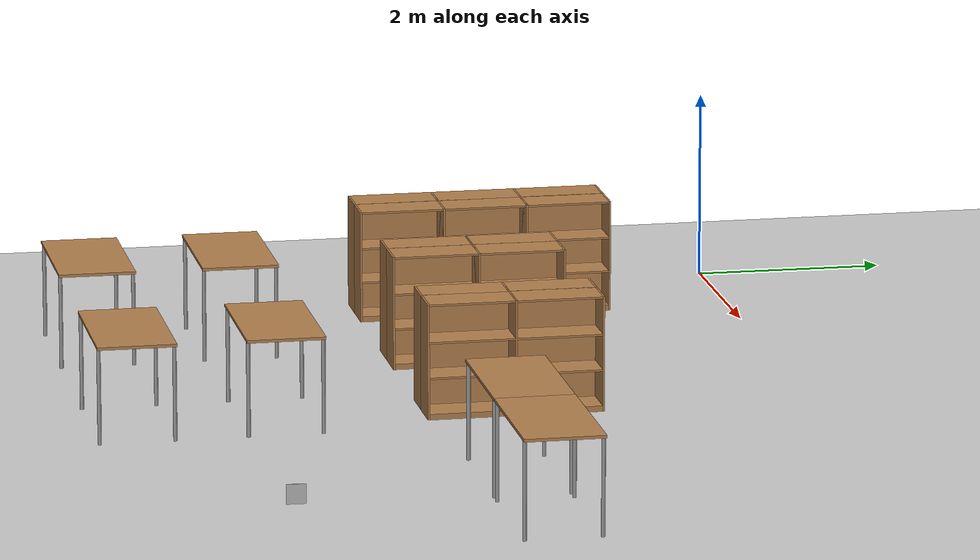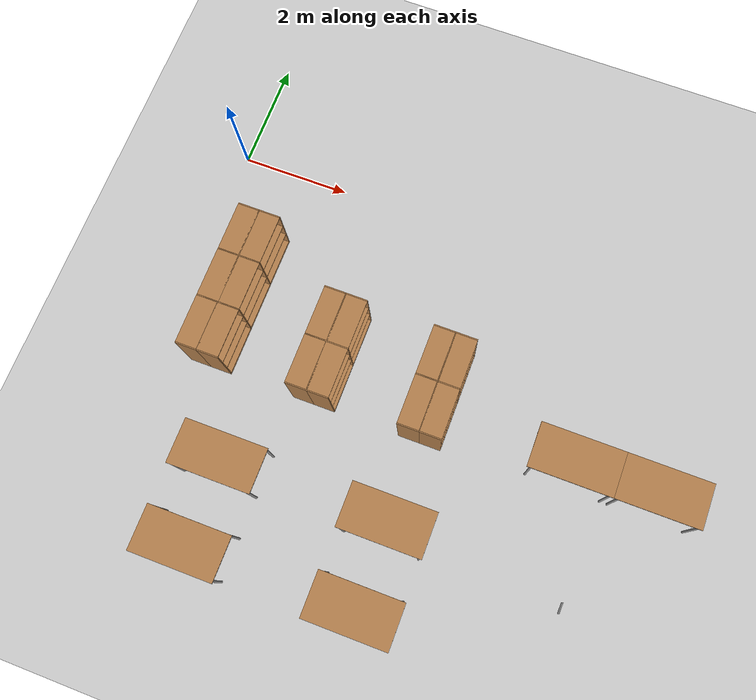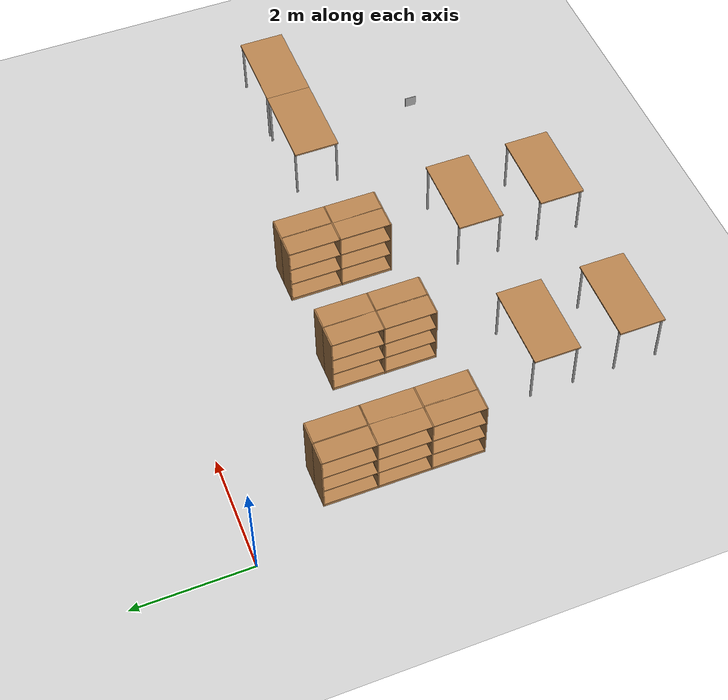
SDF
<sdf version="1.7">
 <world name="default">
  <model name="ground_plane">
   <static>1</static>
   <link name="link">
    <collision name="collision">
     <geometry><plane><normal>0 0 1</normal><size>100 100</size></plane></geometry>
     <surface><friction><ode><mu>100</mu><mu2>50</mu2></ode></friction></surface>
    </collision>
    <visual name="visual">
     <cast_shadows>0</cast_shadows>
     <geometry><plane><normal>0 0 1</normal><size>100 100</size></plane></geometry>
     <material>
      <script><uri>file://media/materials/scripts/gazebo.material</uri><name>Gazebo/Grey</name></script>
     </material>
    </visual>
   </link>
  </model>
  <model name="bot_sec5_A_2">
   <static>1</static>
   <link name="link">
    <inertial><mass>1</mass></inertial>
    <visual name="visual1">
     <pose>0 0.005 0.6 0 -0 0</pose>
     <geometry><box><size>0.9 0.01 1.2</size></box></geometry>
     <material>
      <script><uri>file://media/materials/scripts/gazebo.material</uri><name>Gazebo/Wood</name></script>
     </material>
    </visual>
    <visual name="visual2">
     <pose>0.45 -0.195 0.6 0 -0 0</pose>
     <geometry><box><size>0.02 0.4 1.2</size></box></geometry>
     <material>
      <script><uri>file://media/materials/scripts/gazebo.material</uri><name>Gazebo/Wood</name></script>
     </material>
    </visual>
    <visual name="visual3">
     <pose>-0.45 -0.195 0.6 0 -0 0</pose>
     <geometry><box><size>0.02 0.4 1.2</size></box></geometry>
     <material>
      <script><uri>file://media/materials/scripts/gazebo.material</uri><name>Gazebo/Wood</name></script>
     </material>
    </visual>
    <visual name="visual4">
     <pose>0 -0.195 0.03 0 -0 0</pose>
     <geometry><box><size>0.88 0.4 0.06</size></box></geometry>
     <material>
      <script><uri>file://media/materials/scripts/gazebo.material</uri><name>Gazebo/Wood</name></script>
     </material>
    </visual>
    <visual name="visual5">
     <pose>0 -0.195 1.19 0 -0 0</pose>
     <geometry><box><size>0.88 0.4 0.02</size></box></geometry>
     <material>
      <script><uri>file://media/materials/scripts/gazebo.material</uri><name>Gazebo/Wood</name></script>
     </material>
    </visual>
    <visual name="visual6">
     <pose>0 -0.195 0.43 0 -0 0</pose>
     <geometry><box><size>0.88 0.4 0.02</size></box></geometry>
     <material>
      <script><uri>file://media/materials/scripts/gazebo.material</uri><name>Gazebo/Wood</name></script>
     </material>
    </visual>
    <visual name="visual7">
     <pose>0 -0.195 0.8 0 -0 0</pose>
     <geometry><box><size>0.88 0.4 0.02</size></box></geometry>
     <material>
      <script><uri>file://media/materials/scripts/gazebo.material</uri><name>Gazebo/Wood</name></script>
     </material>
    </visual>
    <collision name="unified_hitbox">
     <pose>0 -0.1925 0.6 0 -0 0</pose>
     <geometry><box><size>0.92 0.405 1.2</size></box></geometry>
    </collision>
   </link>
   <pose>5 -2.65 0 0 -0 1.57</pose>
  </model>
  <model name="bot_sec5_B_2">
   <static>1</static>
   <link name="link">
    <inertial><mass>1</mass></inertial>
    <visual name="visual1">
     <pose>0 0.005 0.6 0 -0 0</pose>
     <geometry><box><size>0.9 0.01 1.2</size></box></geometry>
     <material>
      <script><uri>file://media/materials/scripts/gazebo.material</uri><name>Gazebo/Wood</name></script>
     </material>
    </visual>
    <visual name="visual2">
     <pose>0.45 -0.195 0.6 0 -0 0</pose>
     <geometry><box><size>0.02 0.4 1.2</size></box></geometry>
     <material>
      <script><uri>file://media/materials/scripts/gazebo.material</uri><name>Gazebo/Wood</name></script>
     </material>
    </visual>
    <visual name="visual3">
     <pose>-0.45 -0.195 0.6 0 -0 0</pose>
     <geometry><box><size>0.02 0.4 1.2</size></box></geometry>
     <material>
      <script><uri>file://media/materials/scripts/gazebo.material</uri><name>Gazebo/Wood</name></script>
     </material>
    </visual>
    <visual name="visual4">
     <pose>0 -0.195 0.03 0 -0 0</pose>
     <geometry><box><size>0.88 0.4 0.06</size></box></geometry>
     <material>
      <script><uri>file://media/materials/scripts/gazebo.material</uri><name>Gazebo/Wood</name></script>
     </material>
    </visual>
    <visual name="visual5">
     <pose>0 -0.195 1.19 0 -0 0</pose>
     <geometry><box><size>0.88 0.4 0.02</size></box></geometry>
     <material>
      <script><uri>file://media/materials/scripts/gazebo.material</uri><name>Gazebo/Wood</name></script>
     </material>
    </visual>
    <visual name="visual6">
     <pose>0 -0.195 0.43 0 -0 0</pose>
     <geometry><box><size>0.88 0.4 0.02</size></box></geometry>
     <material>
      <script><uri>file://media/materials/scripts/gazebo.material</uri><name>Gazebo/Wood</name></script>
     </material>
    </visual>
    <visual name="visual7">
     <pose>0 -0.195 0.8 0 -0 0</pose>
     <geometry><box><size>0.88 0.4 0.02</size></box></geometry>
     <material>
      <script><uri>file://media/materials/scripts/gazebo.material</uri><name>Gazebo/Wood</name></script>
     </material>
    </visual>
    <collision name="unified_hitbox">
     <pose>0 -0.1925 0.6 0 -0 0</pose>
     <geometry><box><size>0.92 0.405 1.2</size></box></geometry>
    </collision>
   </link>
   <pose>5 -2.65 0 0 0 -1.57</pose>
  </model>
  <model name="bot_sec5_A_3">
   <static>1</static>
   <link name="link">
    <inertial><mass>1</mass></inertial>
    <visual name="visual1">
     <pose>0 0.005 0.6 0 -0 0</pose>
     <geometry><box><size>0.9 0.01 1.2</size></box></geometry>
     <material>
      <script><uri>file://media/materials/scripts/gazebo.material</uri><name>Gazebo/Wood</name></script>
     </material>
    </visual>
    <visual name="visual2">
     <pose>0.45 -0.195 0.6 0 -0 0</pose>
     <geometry><box><size>0.02 0.4 1.2</size></box></geometry>
     <material>
      <script><uri>file://media/materials/scripts/gazebo.material</uri><name>Gazebo/Wood</name></script>
     </material>
    </visual>
    <visual name="visual3">
     <pose>-0.45 -0.195 0.6 0 -0 0</pose>
     <geometry><box><size>0.02 0.4 1.2</size></box></geometry>
     <material>
      <script><uri>file://media/materials/scripts/gazebo.material</uri><name>Gazebo/Wood</name></script>
     </material>
    </visual>
    <visual name="visual4">
     <pose>0 -0.195 0.03 0 -0 0</pose>
     <geometry><box><size>0.88 0.4 0.06</size></box></geometry>
     <material>
      <script><uri>file://media/materials/scripts/gazebo.material</uri><name>Gazebo/Wood</name></script>
     </material>
    </visual>
    <visual name="visual5">
     <pose>0 -0.195 1.19 0 -0 0</pose>
     <geometry><box><size>0.88 0.4 0.02</size></box></geometry>
     <material>
      <script><uri>file://media/materials/scripts/gazebo.material</uri><name>Gazebo/Wood</name></script>
     </material>
    </visual>
    <visual name="visual6">
     <pose>0 -0.195 0.43 0 -0 0</pose>
     <geometry><box><size>0.88 0.4 0.02</size></box></geometry>
     <material>
      <script><uri>file://media/materials/scripts/gazebo.material</uri><name>Gazebo/Wood</name></script>
     </material>
    </visual>
    <visual name="visual7">
     <pose>0 -0.195 0.8 0 -0 0</pose>
     <geometry><box><size>0.88 0.4 0.02</size></box></geometry>
     <material>
      <script><uri>file://media/materials/scripts/gazebo.material</uri><name>Gazebo/Wood</name></script>
     </material>
    </visual>
    <collision name="unified_hitbox">
     <pose>0 -0.1925 0.6 0 -0 0</pose>
     <geometry><box><size>0.92 0.405 1.2</size></box></geometry>
    </collision>
   </link>
   <pose>5 -3.55 0 0 -0 1.57</pose>
  </model>
  <model name="bot_sec5_B_3">
   <static>1</static>
   <link name="link">
    <inertial><mass>1</mass></inertial>
    <visual name="visual1">
     <pose>0 0.005 0.6 0 -0 0</pose>
     <geometry><box><size>0.9 0.01 1.2</size></box></geometry>
     <material>
      <script><uri>file://media/materials/scripts/gazebo.material</uri><name>Gazebo/Wood</name></script>
     </material>
    </visual>
    <visual name="visual2">
     <pose>0.45 -0.195 0.6 0 -0 0</pose>
     <geometry><box><size>0.02 0.4 1.2</size></box></geometry>
     <material>
      <script><uri>file://media/materials/scripts/gazebo.material</uri><name>Gazebo/Wood</name></script>
     </material>
    </visual>
    <visual name="visual3">
     <pose>-0.45 -0.195 0.6 0 -0 0</pose>
     <geometry><box><size>0.02 0.4 1.2</size></box></geometry>
     <material>
      <script><uri>file://media/materials/scripts/gazebo.material</uri><name>Gazebo/Wood</name></script>
     </material>
    </visual>
    <visual name="visual4">
     <pose>0 -0.195 0.03 0 -0 0</pose>
     <geometry><box><size>0.88 0.4 0.06</size></box></geometry>
     <material>
      <script><uri>file://media/materials/scripts/gazebo.material</uri><name>Gazebo/Wood</name></script>
     </material>
    </visual>
    <visual name="visual5">
     <pose>0 -0.195 1.19 0 -0 0</pose>
     <geometry><box><size>0.88 0.4 0.02</size></box></geometry>
     <material>
      <script><uri>file://media/materials/scripts/gazebo.material</uri><name>Gazebo/Wood</name></script>
     </material>
    </visual>
    <visual name="visual6">
     <pose>0 -0.195 0.43 0 -0 0</pose>
     <geometry><box><size>0.88 0.4 0.02</size></box></geometry>
     <material>
      <script><uri>file://media/materials/scripts/gazebo.material</uri><name>Gazebo/Wood</name></script>
     </material>
    </visual>
    <visual name="visual7">
     <pose>0 -0.195 0.8 0 -0 0</pose>
     <geometry><box><size>0.88 0.4 0.02</size></box></geometry>
     <material>
      <script><uri>file://media/materials/scripts/gazebo.material</uri><name>Gazebo/Wood</name></script>
     </material>
    </visual>
    <collision name="unified_hitbox">
     <pose>0 -0.1925 0.6 0 -0 0</pose>
     <geometry><box><size>0.92 0.405 1.2</size></box></geometry>
    </collision>
   </link>
   <pose>5 -3.55 0 0 0 -1.57</pose>
  </model>
  <model name="bot_sec3_A_2">
   <static>1</static>
   <link name="link">
    <inertial><mass>1</mass></inertial>
    <visual name="visual1">
     <pose>0 0.005 0.6 0 -0 0</pose>
     <geometry><box><size>0.9 0.01 1.2</size></box></geometry>
     <material>
      <script><uri>file://media/materials/scripts/gazebo.material</uri><name>Gazebo/Wood</name></script>
     </material>
    </visual>
    <visual name="visual2">
     <pose>0.45 -0.195 0.6 0 -0 0</pose>
     <geometry><box><size>0.02 0.4 1.2</size></box></geometry>
     <material>
      <script><uri>file://media/materials/scripts/gazebo.material</uri><name>Gazebo/Wood</name></script>
     </material>
    </visual>
    <visual name="visual3">
     <pose>-0.45 -0.195 0.6 0 -0 0</pose>
     <geometry><box><size>0.02 0.4 1.2</size></box></geometry>
     <material>
      <script><uri>file://media/materials/scripts/gazebo.material</uri><name>Gazebo/Wood</name></script>
     </material>
    </visual>
    <visual name="visual4">
     <pose>0 -0.195 0.03 0 -0 0</pose>
     <geometry><box><size>0.88 0.4 0.06</size></box></geometry>
     <material>
      <script><uri>file://media/materials/scripts/gazebo.material</uri><name>Gazebo/Wood</name></script>
     </material>
    </visual>
    <visual name="visual5">
     <pose>0 -0.195 1.19 0 -0 0</pose>
     <geometry><box><size>0.88 0.4 0.02</size></box></geometry>
     <material>
      <script><uri>file://media/materials/scripts/gazebo.material</uri><name>Gazebo/Wood</name></script>
     </material>
    </visual>
    <visual name="visual6">
     <pose>0 -0.195 0.43 0 -0 0</pose>
     <geometry><box><size>0.88 0.4 0.02</size></box></geometry>
     <material>
      <script><uri>file://media/materials/scripts/gazebo.material</uri><name>Gazebo/Wood</name></script>
     </material>
    </visual>
    <visual name="visual7">
     <pose>0 -0.195 0.8 0 -0 0</pose>
     <geometry><box><size>0.88 0.4 0.02</size></box></geometry>
     <material>
      <script><uri>file://media/materials/scripts/gazebo.material</uri><name>Gazebo/Wood</name></script>
     </material>
    </visual>
    <collision name="unified_hitbox">
     <pose>0 -0.1925 0.6 0 -0 0</pose>
     <geometry><box><size>0.92 0.405 1.2</size></box></geometry>
    </collision>
   </link>
   <pose>3 -2.65 0 0 -0 1.57</pose>
  </model>
  <model name="bot_sec3_B_2">
   <static>1</static>
   <link name="link">
    <inertial><mass>1</mass></inertial>
    <visual name="visual1">
     <pose>0 0.005 0.6 0 -0 0</pose>
     <geometry><box><size>0.9 0.01 1.2</size></box></geometry>
     <material>
      <script><uri>file://media/materials/scripts/gazebo.material</uri><name>Gazebo/Wood</name></script>
     </material>
    </visual>
    <visual name="visual2">
     <pose>0.45 -0.195 0.6 0 -0 0</pose>
     <geometry><box><size>0.02 0.4 1.2</size></box></geometry>
     <material>
      <script><uri>file://media/materials/scripts/gazebo.material</uri><name>Gazebo/Wood</name></script>
     </material>
    </visual>
    <visual name="visual3">
     <pose>-0.45 -0.195 0.6 0 -0 0</pose>
     <geometry><box><size>0.02 0.4 1.2</size></box></geometry>
     <material>
      <script><uri>file://media/materials/scripts/gazebo.material</uri><name>Gazebo/Wood</name></script>
     </material>
    </visual>
    <visual name="visual4">
     <pose>0 -0.195 0.03 0 -0 0</pose>
     <geometry><box><size>0.88 0.4 0.06</size></box></geometry>
     <material>
      <script><uri>file://media/materials/scripts/gazebo.material</uri><name>Gazebo/Wood</name></script>
     </material>
    </visual>
    <visual name="visual5">
     <pose>0 -0.195 1.19 0 -0 0</pose>
     <geometry><box><size>0.88 0.4 0.02</size></box></geometry>
     <material>
      <script><uri>file://media/materials/scripts/gazebo.material</uri><name>Gazebo/Wood</name></script>
     </material>
    </visual>
    <visual name="visual6">
     <pose>0 -0.195 0.43 0 -0 0</pose>
     <geometry><box><size>0.88 0.4 0.02</size></box></geometry>
     <material>
      <script><uri>file://media/materials/scripts/gazebo.material</uri><name>Gazebo/Wood</name></script>
     </material>
    </visual>
    <visual name="visual7">
     <pose>0 -0.195 0.8 0 -0 0</pose>
     <geometry><box><size>0.88 0.4 0.02</size></box></geometry>
     <material>
      <script><uri>file://media/materials/scripts/gazebo.material</uri><name>Gazebo/Wood</name></script>
     </material>
    </visual>
    <collision name="unified_hitbox">
     <pose>0 -0.1925 0.6 0 -0 0</pose>
     <geometry><box><size>0.92 0.405 1.2</size></box></geometry>
    </collision>
   </link>
   <pose>3 -2.65 0 0 0 -1.57</pose>
  </model>
  <model name="bot_sec3_A_3">
   <static>1</static>
   <link name="link">
    <inertial><mass>1</mass></inertial>
    <visual name="visual1">
     <pose>0 0.005 0.6 0 -0 0</pose>
     <geometry><box><size>0.9 0.01 1.2</size></box></geometry>
     <material>
      <script><uri>file://media/materials/scripts/gazebo.material</uri><name>Gazebo/Wood</name></script>
     </material>
    </visual>
    <visual name="visual2">
     <pose>0.45 -0.195 0.6 0 -0 0</pose>
     <geometry><box><size>0.02 0.4 1.2</size></box></geometry>
     <material>
      <script><uri>file://media/materials/scripts/gazebo.material</uri><name>Gazebo/Wood</name></script>
     </material>
    </visual>
    <visual name="visual3">
     <pose>-0.45 -0.195 0.6 0 -0 0</pose>
     <geometry><box><size>0.02 0.4 1.2</size></box></geometry>
     <material>
      <script><uri>file://media/materials/scripts/gazebo.material</uri><name>Gazebo/Wood</name></script>
     </material>
    </visual>
    <visual name="visual4">
     <pose>0 -0.195 0.03 0 -0 0</pose>
     <geometry><box><size>0.88 0.4 0.06</size></box></geometry>
     <material>
      <script><uri>file://media/materials/scripts/gazebo.material</uri><name>Gazebo/Wood</name></script>
     </material>
    </visual>
    <visual name="visual5">
     <pose>0 -0.195 1.19 0 -0 0</pose>
     <geometry><box><size>0.88 0.4 0.02</size></box></geometry>
     <material>
      <script><uri>file://media/materials/scripts/gazebo.material</uri><name>Gazebo/Wood</name></script>
     </material>
    </visual>
    <visual name="visual6">
     <pose>0 -0.195 0.43 0 -0 0</pose>
     <geometry><box><size>0.88 0.4 0.02</size></box></geometry>
     <material>
      <script><uri>file://media/materials/scripts/gazebo.material</uri><name>Gazebo/Wood</name></script>
     </material>
    </visual>
    <visual name="visual7">
     <pose>0 -0.195 0.8 0 -0 0</pose>
     <geometry><box><size>0.88 0.4 0.02</size></box></geometry>
     <material>
      <script><uri>file://media/materials/scripts/gazebo.material</uri><name>Gazebo/Wood</name></script>
     </material>
    </visual>
    <collision name="unified_hitbox">
     <pose>0 -0.1925 0.6 0 -0 0</pose>
     <geometry><box><size>0.92 0.405 1.2</size></box></geometry>
    </collision>
   </link>
   <pose>3 -3.55 0 0 -0 1.57</pose>
  </model>
  <model name="bot_sec3_B_3">
   <static>1</static>
   <link name="link">
    <inertial><mass>1</mass></inertial>
    <visual name="visual1">
     <pose>0 0.005 0.6 0 -0 0</pose>
     <geometry><box><size>0.9 0.01 1.2</size></box></geometry>
     <material>
      <script><uri>file://media/materials/scripts/gazebo.material</uri><name>Gazebo/Wood</name></script>
     </material>
    </visual>
    <visual name="visual2">
     <pose>0.45 -0.195 0.6 0 -0 0</pose>
     <geometry><box><size>0.02 0.4 1.2</size></box></geometry>
     <material>
      <script><uri>file://media/materials/scripts/gazebo.material</uri><name>Gazebo/Wood</name></script>
     </material>
    </visual>
    <visual name="visual3">
     <pose>-0.45 -0.195 0.6 0 -0 0</pose>
     <geometry><box><size>0.02 0.4 1.2</size></box></geometry>
     <material>
      <script><uri>file://media/materials/scripts/gazebo.material</uri><name>Gazebo/Wood</name></script>
     </material>
    </visual>
    <visual name="visual4">
     <pose>0 -0.195 0.03 0 -0 0</pose>
     <geometry><box><size>0.88 0.4 0.06</size></box></geometry>
     <material>
      <script><uri>file://media/materials/scripts/gazebo.material</uri><name>Gazebo/Wood</name></script>
     </material>
    </visual>
    <visual name="visual5">
     <pose>0 -0.195 1.19 0 -0 0</pose>
     <geometry><box><size>0.88 0.4 0.02</size></box></geometry>
     <material>
      <script><uri>file://media/materials/scripts/gazebo.material</uri><name>Gazebo/Wood</name></script>
     </material>
    </visual>
    <visual name="visual6">
     <pose>0 -0.195 0.43 0 -0 0</pose>
     <geometry><box><size>0.88 0.4 0.02</size></box></geometry>
     <material>
      <script><uri>file://media/materials/scripts/gazebo.material</uri><name>Gazebo/Wood</name></script>
     </material>
    </visual>
    <visual name="visual7">
     <pose>0 -0.195 0.8 0 -0 0</pose>
     <geometry><box><size>0.88 0.4 0.02</size></box></geometry>
     <material>
      <script><uri>file://media/materials/scripts/gazebo.material</uri><name>Gazebo/Wood</name></script>
     </material>
    </visual>
    <collision name="unified_hitbox">
     <pose>0 -0.1925 0.6 0 -0 0</pose>
     <geometry><box><size>0.92 0.405 1.2</size></box></geometry>
    </collision>
   </link>
   <pose>3 -3.55 0 0 0 -1.57</pose>
  </model>
  <model name="bot_sec1_A_1">
   <static>1</static>
   <link name="link">
    <inertial><mass>1</mass></inertial>
    <visual name="visual1">
     <pose>0 0.005 0.6 0 -0 0</pose>
     <geometry><box><size>0.9 0.01 1.2</size></box></geometry>
     <material>
      <script><uri>file://media/materials/scripts/gazebo.material</uri><name>Gazebo/Wood</name></script>
     </material>
    </visual>
    <visual name="visual2">
     <pose>0.45 -0.195 0.6 0 -0 0</pose>
     <geometry><box><size>0.02 0.4 1.2</size></box></geometry>
     <material>
      <script><uri>file://media/materials/scripts/gazebo.material</uri><name>Gazebo/Wood</name></script>
     </material>
    </visual>
    <visual name="visual3">
     <pose>-0.45 -0.195 0.6 0 -0 0</pose>
     <geometry><box><size>0.02 0.4 1.2</size></box></geometry>
     <material>
      <script><uri>file://media/materials/scripts/gazebo.material</uri><name>Gazebo/Wood</name></script>
     </material>
    </visual>
    <visual name="visual4">
     <pose>0 -0.195 0.03 0 -0 0</pose>
     <geometry><box><size>0.88 0.4 0.06</size></box></geometry>
     <material>
      <script><uri>file://media/materials/scripts/gazebo.material</uri><name>Gazebo/Wood</name></script>
     </material>
    </visual>
    <visual name="visual5">
     <pose>0 -0.195 1.19 0 -0 0</pose>
     <geometry><box><size>0.88 0.4 0.02</size></box></geometry>
     <material>
      <script><uri>file://media/materials/scripts/gazebo.material</uri><name>Gazebo/Wood</name></script>
     </material>
    </visual>
    <visual name="visual6">
     <pose>0 -0.195 0.43 0 -0 0</pose>
     <geometry><box><size>0.88 0.4 0.02</size></box></geometry>
     <material>
      <script><uri>file://media/materials/scripts/gazebo.material</uri><name>Gazebo/Wood</name></script>
     </material>
    </visual>
    <visual name="visual7">
     <pose>0 -0.195 0.8 0 -0 0</pose>
     <geometry><box><size>0.88 0.4 0.02</size></box></geometry>
     <material>
      <script><uri>file://media/materials/scripts/gazebo.material</uri><name>Gazebo/Wood</name></script>
     </material>
    </visual>
    <collision name="unified_hitbox">
     <pose>0 -0.1925 0.6 0 -0 0</pose>
     <geometry><box><size>0.92 0.405 1.2</size></box></geometry>
    </collision>
   </link>
   <pose>1 -1.75 0 0 -0 1.57</pose>
  </model>
  <model name="bot_sec1_B_1">
   <static>1</static>
   <link name="link">
    <inertial><mass>1</mass></inertial>
    <visual name="visual1">
     <pose>0 0.005 0.6 0 -0 0</pose>
     <geometry><box><size>0.9 0.01 1.2</size></box></geometry>
     <material>
      <script><uri>file://media/materials/scripts/gazebo.material</uri><name>Gazebo/Wood</name></script>
     </material>
    </visual>
    <visual name="visual2">
     <pose>0.45 -0.195 0.6 0 -0 0</pose>
     <geometry><box><size>0.02 0.4 1.2</size></box></geometry>
     <material>
      <script><uri>file://media/materials/scripts/gazebo.material</uri><name>Gazebo/Wood</name></script>
     </material>
    </visual>
    <visual name="visual3">
     <pose>-0.45 -0.195 0.6 0 -0 0</pose>
     <geometry><box><size>0.02 0.4 1.2</size></box></geometry>
     <material>
      <script><uri>file://media/materials/scripts/gazebo.material</uri><name>Gazebo/Wood</name></script>
     </material>
    </visual>
    <visual name="visual4">
     <pose>0 -0.195 0.03 0 -0 0</pose>
     <geometry><box><size>0.88 0.4 0.06</size></box></geometry>
     <material>
      <script><uri>file://media/materials/scripts/gazebo.material</uri><name>Gazebo/Wood</name></script>
     </material>
    </visual>
    <visual name="visual5">
     <pose>0 -0.195 1.19 0 -0 0</pose>
     <geometry><box><size>0.88 0.4 0.02</size></box></geometry>
     <material>
      <script><uri>file://media/materials/scripts/gazebo.material</uri><name>Gazebo/Wood</name></script>
     </material>
    </visual>
    <visual name="visual6">
     <pose>0 -0.195 0.43 0 -0 0</pose>
     <geometry><box><size>0.88 0.4 0.02</size></box></geometry>
     <material>
      <script><uri>file://media/materials/scripts/gazebo.material</uri><name>Gazebo/Wood</name></script>
     </material>
    </visual>
    <visual name="visual7">
     <pose>0 -0.195 0.8 0 -0 0</pose>
     <geometry><box><size>0.88 0.4 0.02</size></box></geometry>
     <material>
      <script><uri>file://media/materials/scripts/gazebo.material</uri><name>Gazebo/Wood</name></script>
     </material>
    </visual>
    <collision name="unified_hitbox">
     <pose>0 -0.1925 0.6 0 -0 0</pose>
     <geometry><box><size>0.92 0.405 1.2</size></box></geometry>
    </collision>
   </link>
   <pose>1 -1.75 0 0 0 -1.57</pose>
  </model>
  <model name="bot_sec1_A_2">
   <static>1</static>
   <link name="link">
    <inertial><mass>1</mass></inertial>
    <visual name="visual1">
     <pose>0 0.005 0.6 0 -0 0</pose>
     <geometry><box><size>0.9 0.01 1.2</size></box></geometry>
     <material>
      <script><uri>file://media/materials/scripts/gazebo.material</uri><name>Gazebo/Wood</name></script>
     </material>
    </visual>
    <visual name="visual2">
     <pose>0.45 -0.195 0.6 0 -0 0</pose>
     <geometry><box><size>0.02 0.4 1.2</size></box></geometry>
     <material>
      <script><uri>file://media/materials/scripts/gazebo.material</uri><name>Gazebo/Wood</name></script>
     </material>
    </visual>
    <visual name="visual3">
     <pose>-0.45 -0.195 0.6 0 -0 0</pose>
     <geometry><box><size>0.02 0.4 1.2</size></box></geometry>
     <material>
      <script><uri>file://media/materials/scripts/gazebo.material</uri><name>Gazebo/Wood</name></script>
     </material>
    </visual>
    <visual name="visual4">
     <pose>0 -0.195 0.03 0 -0 0</pose>
     <geometry><box><size>0.88 0.4 0.06</size></box></geometry>
     <material>
      <script><uri>file://media/materials/scripts/gazebo.material</uri><name>Gazebo/Wood</name></script>
     </material>
    </visual>
    <visual name="visual5">
     <pose>0 -0.195 1.19 0 -0 0</pose>
     <geometry><box><size>0.88 0.4 0.02</size></box></geometry>
     <material>
      <script><uri>file://media/materials/scripts/gazebo.material</uri><name>Gazebo/Wood</name></script>
     </material>
    </visual>
    <visual name="visual6">
     <pose>0 -0.195 0.43 0 -0 0</pose>
     <geometry><box><size>0.88 0.4 0.02</size></box></geometry>
     <material>
      <script><uri>file://media/materials/scripts/gazebo.material</uri><name>Gazebo/Wood</name></script>
     </material>
    </visual>
    <visual name="visual7">
     <pose>0 -0.195 0.8 0 -0 0</pose>
     <geometry><box><size>0.88 0.4 0.02</size></box></geometry>
     <material>
      <script><uri>file://media/materials/scripts/gazebo.material</uri><name>Gazebo/Wood</name></script>
     </material>
    </visual>
    <collision name="unified_hitbox">
     <pose>0 -0.1925 0.6 0 -0 0</pose>
     <geometry><box><size>0.92 0.405 1.2</size></box></geometry>
    </collision>
   </link>
   <pose>1 -2.65 0 0 -0 1.57</pose>
  </model>
  <model name="bot_sec1_B_2">
   <static>1</static>
   <link name="link">
    <inertial><mass>1</mass></inertial>
    <visual name="visual1">
     <pose>0 0.005 0.6 0 -0 0</pose>
     <geometry><box><size>0.9 0.01 1.2</size></box></geometry>
     <material>
      <script><uri>file://media/materials/scripts/gazebo.material</uri><name>Gazebo/Wood</name></script>
     </material>
    </visual>
    <visual name="visual2">
     <pose>0.45 -0.195 0.6 0 -0 0</pose>
     <geometry><box><size>0.02 0.4 1.2</size></box></geometry>
     <material>
      <script><uri>file://media/materials/scripts/gazebo.material</uri><name>Gazebo/Wood</name></script>
     </material>
    </visual>
    <visual name="visual3">
     <pose>-0.45 -0.195 0.6 0 -0 0</pose>
     <geometry><box><size>0.02 0.4 1.2</size></box></geometry>
     <material>
      <script><uri>file://media/materials/scripts/gazebo.material</uri><name>Gazebo/Wood</name></script>
     </material>
    </visual>
    <visual name="visual4">
     <pose>0 -0.195 0.03 0 -0 0</pose>
     <geometry><box><size>0.88 0.4 0.06</size></box></geometry>
     <material>
      <script><uri>file://media/materials/scripts/gazebo.material</uri><name>Gazebo/Wood</name></script>
     </material>
    </visual>
    <visual name="visual5">
     <pose>0 -0.195 1.19 0 -0 0</pose>
     <geometry><box><size>0.88 0.4 0.02</size></box></geometry>
     <material>
      <script><uri>file://media/materials/scripts/gazebo.material</uri><name>Gazebo/Wood</name></script>
     </material>
    </visual>
    <visual name="visual6">
     <pose>0 -0.195 0.43 0 -0 0</pose>
     <geometry><box><size>0.88 0.4 0.02</size></box></geometry>
     <material>
      <script><uri>file://media/materials/scripts/gazebo.material</uri><name>Gazebo/Wood</name></script>
     </material>
    </visual>
    <visual name="visual7">
     <pose>0 -0.195 0.8 0 -0 0</pose>
     <geometry><box><size>0.88 0.4 0.02</size></box></geometry>
     <material>
      <script><uri>file://media/materials/scripts/gazebo.material</uri><name>Gazebo/Wood</name></script>
     </material>
    </visual>
    <collision name="unified_hitbox">
     <pose>0 -0.1925 0.6 0 -0 0</pose>
     <geometry><box><size>0.92 0.405 1.2</size></box></geometry>
    </collision>
   </link>
   <pose>1 -2.65 0 0 0 -1.57</pose>
  </model>
  <model name="bot_sec1_A_3">
   <static>1</static>
   <link name="link">
    <inertial><mass>1</mass></inertial>
    <visual name="visual1">
     <pose>0 0.005 0.6 0 -0 0</pose>
     <geometry><box><size>0.9 0.01 1.2</size></box></geometry>
     <material>
      <script><uri>file://media/materials/scripts/gazebo.material</uri><name>Gazebo/Wood</name></script>
     </material>
    </visual>
    <visual name="visual2">
     <pose>0.45 -0.195 0.6 0 -0 0</pose>
     <geometry><box><size>0.02 0.4 1.2</size></box></geometry>
     <material>
      <script><uri>file://media/materials/scripts/gazebo.material</uri><name>Gazebo/Wood</name></script>
     </material>
    </visual>
    <visual name="visual3">
     <pose>-0.45 -0.195 0.6 0 -0 0</pose>
     <geometry><box><size>0.02 0.4 1.2</size></box></geometry>
     <material>
      <script><uri>file://media/materials/scripts/gazebo.material</uri><name>Gazebo/Wood</name></script>
     </material>
    </visual>
    <visual name="visual4">
     <pose>0 -0.195 0.03 0 -0 0</pose>
     <geometry><box><size>0.88 0.4 0.06</size></box></geometry>
     <material>
      <script><uri>file://media/materials/scripts/gazebo.material</uri><name>Gazebo/Wood</name></script>
     </material>
    </visual>
    <visual name="visual5">
     <pose>0 -0.195 1.19 0 -0 0</pose>
     <geometry><box><size>0.88 0.4 0.02</size></box></geometry>
     <material>
      <script><uri>file://media/materials/scripts/gazebo.material</uri><name>Gazebo/Wood</name></script>
     </material>
    </visual>
    <visual name="visual6">
     <pose>0 -0.195 0.43 0 -0 0</pose>
     <geometry><box><size>0.88 0.4 0.02</size></box></geometry>
     <material>
      <script><uri>file://media/materials/scripts/gazebo.material</uri><name>Gazebo/Wood</name></script>
     </material>
    </visual>
    <visual name="visual7">
     <pose>0 -0.195 0.8 0 -0 0</pose>
     <geometry><box><size>0.88 0.4 0.02</size></box></geometry>
     <material>
      <script><uri>file://media/materials/scripts/gazebo.material</uri><name>Gazebo/Wood</name></script>
     </material>
    </visual>
    <collision name="unified_hitbox">
     <pose>0 -0.1925 0.6 0 -0 0</pose>
     <geometry><box><size>0.92 0.405 1.2</size></box></geometry>
    </collision>
   </link>
   <pose>1 -3.55 0 0 -0 1.57</pose>
  </model>
  <model name="bot_sec1_B_3">
   <static>1</static>
   <link name="link">
    <inertial><mass>1</mass></inertial>
    <visual name="visual1">
     <pose>0 0.005 0.6 0 -0 0</pose>
     <geometry><box><size>0.9 0.01 1.2</size></box></geometry>
     <material>
      <script><uri>file://media/materials/scripts/gazebo.material</uri><name>Gazebo/Wood</name></script>
     </material>
    </visual>
    <visual name="visual2">
     <pose>0.45 -0.195 0.6 0 -0 0</pose>
     <geometry><box><size>0.02 0.4 1.2</size></box></geometry>
     <material>
      <script><uri>file://media/materials/scripts/gazebo.material</uri><name>Gazebo/Wood</name></script>
     </material>
    </visual>
    <visual name="visual3">
     <pose>-0.45 -0.195 0.6 0 -0 0</pose>
     <geometry><box><size>0.02 0.4 1.2</size></box></geometry>
     <material>
      <script><uri>file://media/materials/scripts/gazebo.material</uri><name>Gazebo/Wood</name></script>
     </material>
    </visual>
    <visual name="visual4">
     <pose>0 -0.195 0.03 0 -0 0</pose>
     <geometry><box><size>0.88 0.4 0.06</size></box></geometry>
     <material>
      <script><uri>file://media/materials/scripts/gazebo.material</uri><name>Gazebo/Wood</name></script>
     </material>
    </visual>
    <visual name="visual5">
     <pose>0 -0.195 1.19 0 -0 0</pose>
     <geometry><box><size>0.88 0.4 0.02</size></box></geometry>
     <material>
      <script><uri>file://media/materials/scripts/gazebo.material</uri><name>Gazebo/Wood</name></script>
     </material>
    </visual>
    <visual name="visual6">
     <pose>0 -0.195 0.43 0 -0 0</pose>
     <geometry><box><size>0.88 0.4 0.02</size></box></geometry>
     <material>
      <script><uri>file://media/materials/scripts/gazebo.material</uri><name>Gazebo/Wood</name></script>
     </material>
    </visual>
    <visual name="visual7">
     <pose>0 -0.195 0.8 0 -0 0</pose>
     <geometry><box><size>0.88 0.4 0.02</size></box></geometry>
     <material>
      <script><uri>file://media/materials/scripts/gazebo.material</uri><name>Gazebo/Wood</name></script>
     </material>
    </visual>
    <collision name="unified_hitbox">
     <pose>0 -0.1925 0.6 0 -0 0</pose>
     <geometry><box><size>0.92 0.405 1.2</size></box></geometry>
    </collision>
   </link>
   <pose>1 -3.55 0 0 0 -1.57</pose>
  </model>
  <model name="bot_row1_2">
   <static>1</static>
   <link name="link">
    <visual name="visual1">
     <pose>0 0 1 0 -0 0</pose>
     <geometry><box><size>1.5 0.8 0.03</size></box></geometry>
     <material>
      <script><uri>file://media/materials/scripts/gazebo.material</uri><name>Gazebo/Wood</name></script>
     </material>
    </visual>
    <visual name="front_left_leg">
     <pose>0.68 0.38 0.5 0 -0 0</pose>
     <geometry><cylinder><radius>0.02</radius><length>1</length></cylinder></geometry>
     <material>
      <script><uri>file://media/materials/scripts/gazebo.material</uri><name>Gazebo/Grey</name></script>
     </material>
    </visual>
    <visual name="front_right_leg">
     <pose>0.68 -0.38 0.5 0 -0 0</pose>
     <geometry><cylinder><radius>0.02</radius><length>1</length></cylinder></geometry>
     <material>
      <script><uri>file://media/materials/scripts/gazebo.material</uri><name>Gazebo/Grey</name></script>
     </material>
    </visual>
    <visual name="back_right_leg">
     <pose>-0.68 -0.38 0.5 0 -0 0</pose>
     <geometry><cylinder><radius>0.02</radius><length>1</length></cylinder></geometry>
     <material>
      <script><uri>file://media/materials/scripts/gazebo.material</uri><name>Gazebo/Grey</name></script>
     </material>
    </visual>
    <visual name="back_left_leg">
     <pose>-0.68 0.38 0.5 0 -0 0</pose>
     <geometry><cylinder><radius>0.02</radius><length>1</length></cylinder></geometry>
     <material>
      <script><uri>file://media/materials/scripts/gazebo.material</uri><name>Gazebo/Grey</name></script>
     </material>
    </visual>
    <collision name="unified_hitbox">
     <pose>0 0 0.5075 0 -0 0</pose>
     <geometry><box><size>1.5 0.8 1.015</size></box></geometry>
    </collision>
   </link>
   <pose>2 -5.5 0 0 -0 0</pose>
  </model>
  <model name="bot_row1_3">
   <static>1</static>
   <link name="link">
    <visual name="visual1">
     <pose>0 0 1 0 -0 0</pose>
     <geometry><box><size>1.5 0.8 0.03</size></box></geometry>
     <material>
      <script><uri>file://media/materials/scripts/gazebo.material</uri><name>Gazebo/Wood</name></script>
     </material>
    </visual>
    <visual name="front_left_leg">
     <pose>0.68 0.38 0.5 0 -0 0</pose>
     <geometry><cylinder><radius>0.02</radius><length>1</length></cylinder></geometry>
     <material>
      <script><uri>file://media/materials/scripts/gazebo.material</uri><name>Gazebo/Grey</name></script>
     </material>
    </visual>
    <visual name="front_right_leg">
     <pose>0.68 -0.38 0.5 0 -0 0</pose>
     <geometry><cylinder><radius>0.02</radius><length>1</length></cylinder></geometry>
     <material>
      <script><uri>file://media/materials/scripts/gazebo.material</uri><name>Gazebo/Grey</name></script>
     </material>
    </visual>
    <visual name="back_right_leg">
     <pose>-0.68 -0.38 0.5 0 -0 0</pose>
     <geometry><cylinder><radius>0.02</radius><length>1</length></cylinder></geometry>
     <material>
      <script><uri>file://media/materials/scripts/gazebo.material</uri><name>Gazebo/Grey</name></script>
     </material>
    </visual>
    <visual name="back_left_leg">
     <pose>-0.68 0.38 0.5 0 -0 0</pose>
     <geometry><cylinder><radius>0.02</radius><length>1</length></cylinder></geometry>
     <material>
      <script><uri>file://media/materials/scripts/gazebo.material</uri><name>Gazebo/Grey</name></script>
     </material>
    </visual>
    <collision name="unified_hitbox">
     <pose>0 0 0.5075 0 -0 0</pose>
     <geometry><box><size>1.5 0.8 1.015</size></box></geometry>
    </collision>
   </link>
   <pose>5 -5.5 0 0 -0 0</pose>
  </model>
  <model name="bot_row2_2">
   <static>1</static>
   <link name="link">
    <visual name="visual1">
     <pose>0 0 1 0 -0 0</pose>
     <geometry><box><size>1.5 0.8 0.03</size></box></geometry>
     <material>
      <script><uri>file://media/materials/scripts/gazebo.material</uri><name>Gazebo/Wood</name></script>
     </material>
    </visual>
    <visual name="front_left_leg">
     <pose>0.68 0.38 0.5 0 -0 0</pose>
     <geometry><cylinder><radius>0.02</radius><length>1</length></cylinder></geometry>
     <material>
      <script><uri>file://media/materials/scripts/gazebo.material</uri><name>Gazebo/Grey</name></script>
     </material>
    </visual>
    <visual name="front_right_leg">
     <pose>0.68 -0.38 0.5 0 -0 0</pose>
     <geometry><cylinder><radius>0.02</radius><length>1</length></cylinder></geometry>
     <material>
      <script><uri>file://media/materials/scripts/gazebo.material</uri><name>Gazebo/Grey</name></script>
     </material>
    </visual>
    <visual name="back_right_leg">
     <pose>-0.68 -0.38 0.5 0 -0 0</pose>
     <geometry><cylinder><radius>0.02</radius><length>1</length></cylinder></geometry>
     <material>
      <script><uri>file://media/materials/scripts/gazebo.material</uri><name>Gazebo/Grey</name></script>
     </material>
    </visual>
    <visual name="back_left_leg">
     <pose>-0.68 0.38 0.5 0 -0 0</pose>
     <geometry><cylinder><radius>0.02</radius><length>1</length></cylinder></geometry>
     <material>
      <script><uri>file://media/materials/scripts/gazebo.material</uri><name>Gazebo/Grey</name></script>
     </material>
    </visual>
    <collision name="unified_hitbox">
     <pose>0 0 0.5075 0 -0 0</pose>
     <geometry><box><size>1.5 0.8 1.015</size></box></geometry>
    </collision>
   </link>
   <pose>2 -7 0 0 -0 0</pose>
  </model>
  <model name="bot_row2_3">
   <static>1</static>
   <link name="link">
    <visual name="visual1">
     <pose>0 0 1 0 -0 0</pose>
     <geometry><box><size>1.5 0.8 0.03</size></box></geometry>
     <material>
      <script><uri>file://media/materials/scripts/gazebo.material</uri><name>Gazebo/Wood</name></script>
     </material>
    </visual>
    <visual name="front_left_leg">
     <pose>0.68 0.38 0.5 0 -0 0</pose>
     <geometry><cylinder><radius>0.02</radius><length>1</length></cylinder></geometry>
     <material>
      <script><uri>file://media/materials/scripts/gazebo.material</uri><name>Gazebo/Grey</name></script>
     </material>
    </visual>
    <visual name="front_right_leg">
     <pose>0.68 -0.38 0.5 0 -0 0</pose>
     <geometry><cylinder><radius>0.02</radius><length>1</length></cylinder></geometry>
     <material>
      <script><uri>file://media/materials/scripts/gazebo.material</uri><name>Gazebo/Grey</name></script>
     </material>
    </visual>
    <visual name="back_right_leg">
     <pose>-0.68 -0.38 0.5 0 -0 0</pose>
     <geometry><cylinder><radius>0.02</radius><length>1</length></cylinder></geometry>
     <material>
      <script><uri>file://media/materials/scripts/gazebo.material</uri><name>Gazebo/Grey</name></script>
     </material>
    </visual>
    <visual name="back_left_leg">
     <pose>-0.68 0.38 0.5 0 -0 0</pose>
     <geometry><cylinder><radius>0.02</radius><length>1</length></cylinder></geometry>
     <material>
      <script><uri>file://media/materials/scripts/gazebo.material</uri><name>Gazebo/Grey</name></script>
     </material>
    </visual>
    <collision name="unified_hitbox">
     <pose>0 0 0.5075 0 -0 0</pose>
     <geometry><box><size>1.5 0.8 1.015</size></box></geometry>
    </collision>
   </link>
   <pose>5 -7 0 0 -0 0</pose>
  </model>
  <model name="right_bank_4_out">
   <static>1</static>
   <link name="link">
    <visual name="visual1">
     <pose>0 0 1 0 -0 0</pose>
     <geometry><box><size>1.5 0.8 0.03</size></box></geometry>
     <material>
      <script><uri>file://media/materials/scripts/gazebo.material</uri><name>Gazebo/Wood</name></script>
     </material>
    </visual>
    <visual name="front_left_leg">
     <pose>0.68 0.38 0.5 0 -0 0</pose>
     <geometry><cylinder><radius>0.02</radius><length>1</length></cylinder></geometry>
     <material>
      <script><uri>file://media/materials/scripts/gazebo.material</uri><name>Gazebo/Grey</name></script>
     </material>
    </visual>
    <visual name="front_right_leg">
     <pose>0.68 -0.38 0.5 0 -0 0</pose>
     <geometry><cylinder><radius>0.02</radius><length>1</length></cylinder></geometry>
     <material>
      <script><uri>file://media/materials/scripts/gazebo.material</uri><name>Gazebo/Grey</name></script>
     </material>
    </visual>
    <visual name="back_right_leg">
     <pose>-0.68 -0.38 0.5 0 -0 0</pose>
     <geometry><cylinder><radius>0.02</radius><length>1</length></cylinder></geometry>
     <material>
      <script><uri>file://media/materials/scripts/gazebo.material</uri><name>Gazebo/Grey</name></script>
     </material>
    </visual>
    <visual name="back_left_leg">
     <pose>-0.68 0.38 0.5 0 -0 0</pose>
     <geometry><cylinder><radius>0.02</radius><length>1</length></cylinder></geometry>
     <material>
      <script><uri>file://media/materials/scripts/gazebo.material</uri><name>Gazebo/Grey</name></script>
     </material>
    </visual>
    <collision name="unified_hitbox">
     <pose>0 0 0.5075 0 -0 0</pose>
     <geometry><box><size>1.5 0.8 1.015</size></box></geometry>
    </collision>
   </link>
   <pose>7.6 -3.5 0 0 -0 0</pose>
  </model>
  <model name="right_bank_4_in">
   <static>1</static>
   <link name="link">
    <visual name="visual1">
     <pose>0 0 1 0 -0 0</pose>
     <geometry><box><size>1.5 0.8 0.03</size></box></geometry>
     <material>
      <script><uri>file://media/materials/scripts/gazebo.material</uri><name>Gazebo/Wood</name></script>
     </material>
    </visual>
    <visual name="front_left_leg">
     <pose>0.68 0.38 0.5 0 -0 0</pose>
     <geometry><cylinder><radius>0.02</radius><length>1</length></cylinder></geometry>
     <material>
      <script><uri>file://media/materials/scripts/gazebo.material</uri><name>Gazebo/Grey</name></script>
     </material>
    </visual>
    <visual name="front_right_leg">
     <pose>0.68 -0.38 0.5 0 -0 0</pose>
     <geometry><cylinder><radius>0.02</radius><length>1</length></cylinder></geometry>
     <material>
      <script><uri>file://media/materials/scripts/gazebo.material</uri><name>Gazebo/Grey</name></script>
     </material>
    </visual>
    <visual name="back_right_leg">
     <pose>-0.68 -0.38 0.5 0 -0 0</pose>
     <geometry><cylinder><radius>0.02</radius><length>1</length></cylinder></geometry>
     <material>
      <script><uri>file://media/materials/scripts/gazebo.material</uri><name>Gazebo/Grey</name></script>
     </material>
    </visual>
    <visual name="back_left_leg">
     <pose>-0.68 0.38 0.5 0 -0 0</pose>
     <geometry><cylinder><radius>0.02</radius><length>1</length></cylinder></geometry>
     <material>
      <script><uri>file://media/materials/scripts/gazebo.material</uri><name>Gazebo/Grey</name></script>
     </material>
    </visual>
    <collision name="unified_hitbox">
     <pose>0 0 0.5075 0 -0 0</pose>
     <geometry><box><size>1.5 0.8 1.015</size></box></geometry>
    </collision>
   </link>
   <pose>9.1 -3.5 0 0 -0 0</pose>
  </model>
  <model name="aruco_marker_6">
   <static>1</static>
   <link name="link">
    <collision name="collision"><geometry><box><size>0.2 0.2 0.01</size></box></geometry></collision>
    <visual name="visual">
     <geometry><box><size>0.2 0.2 0.01</size></box></geometry>
     <material>
      <script>
       <uri>model://aruco_marker_6/materials/scripts</uri>
       <uri>model://aruco_marker_6/materials/textures</uri>
       <name>Aruco/Marker6</name>
      </script>
     </material>
    </visual>
   </link>
   <pose>8.17951 -5.80472 0.112715 1.57079 0.000358 -1.6019</pose>
  </model>
 </world>
</sdf>
